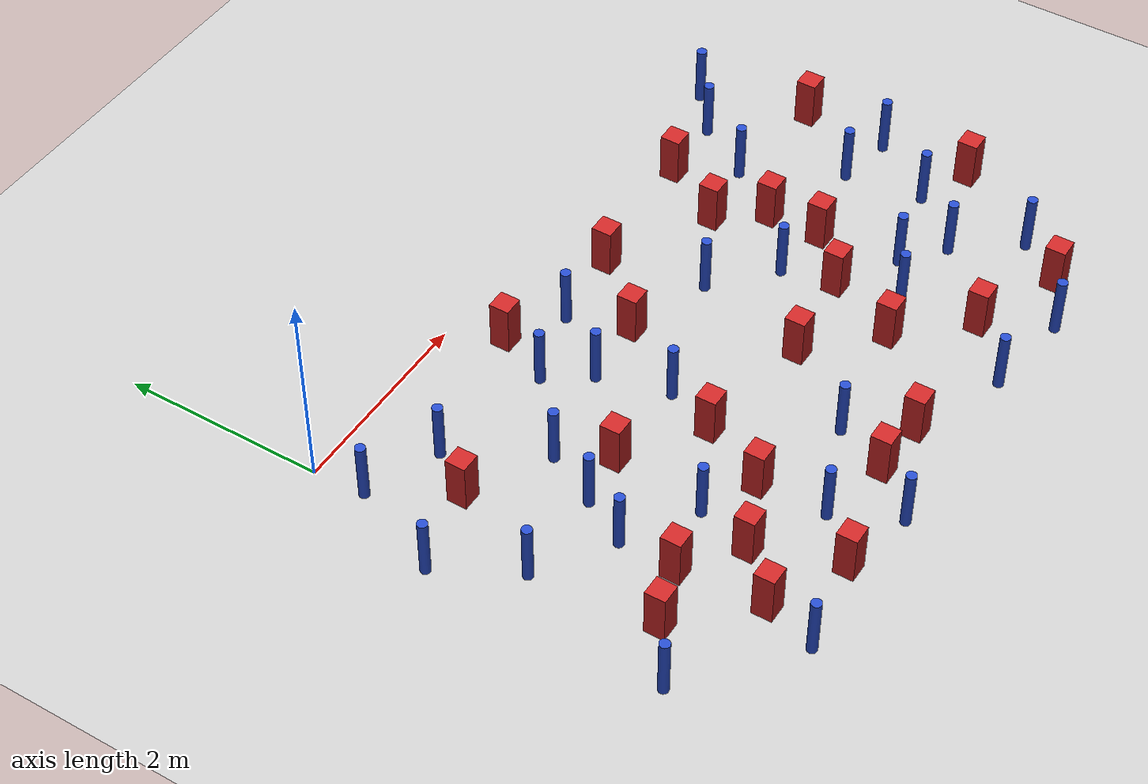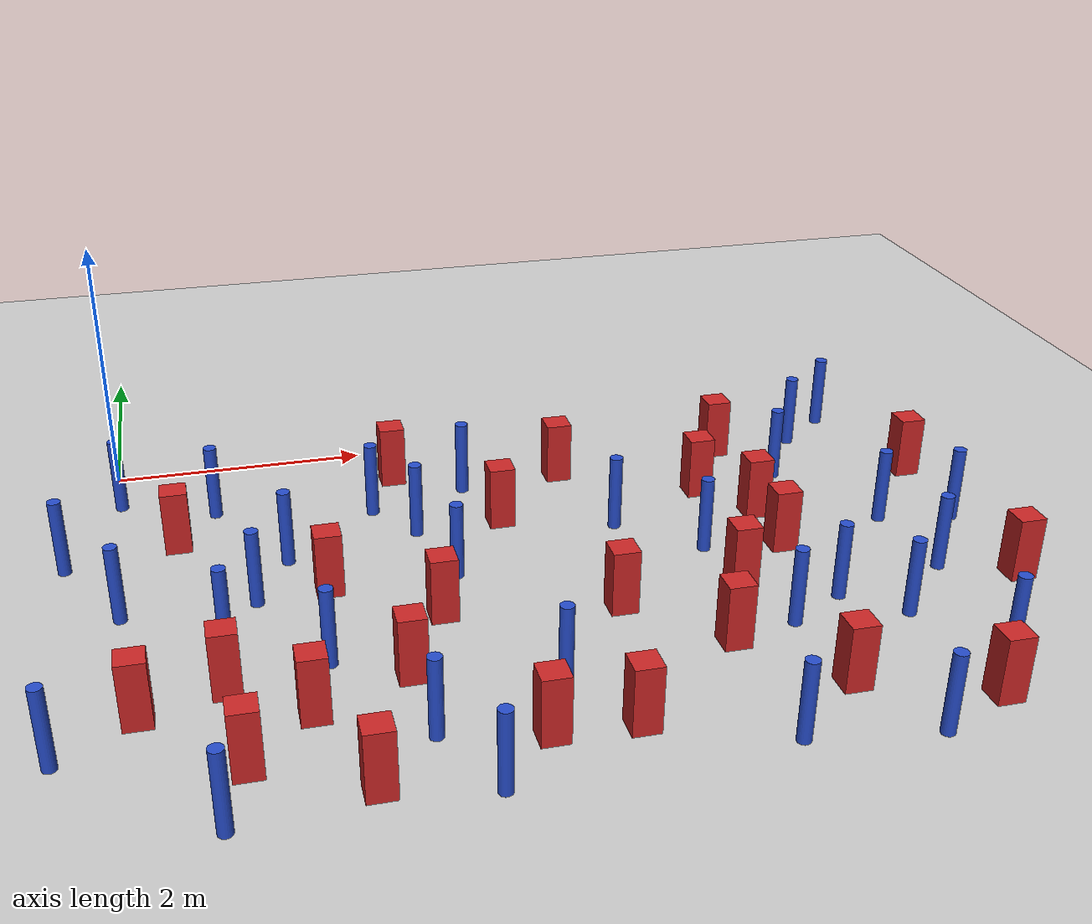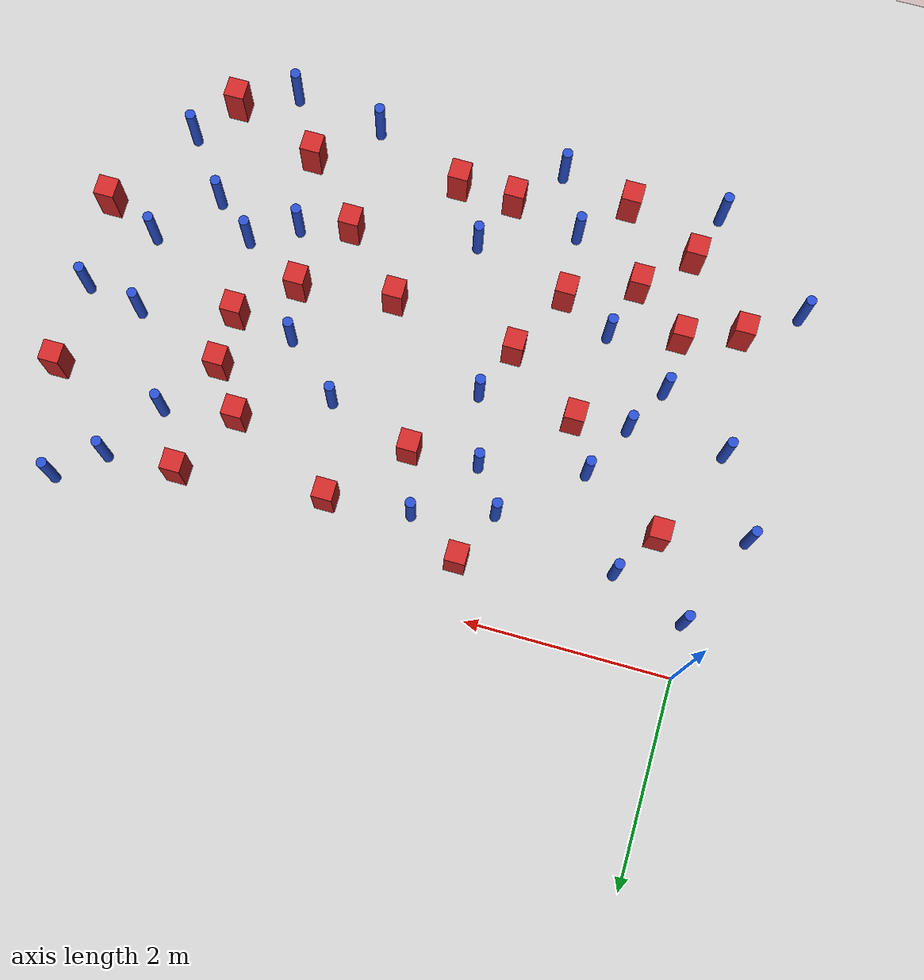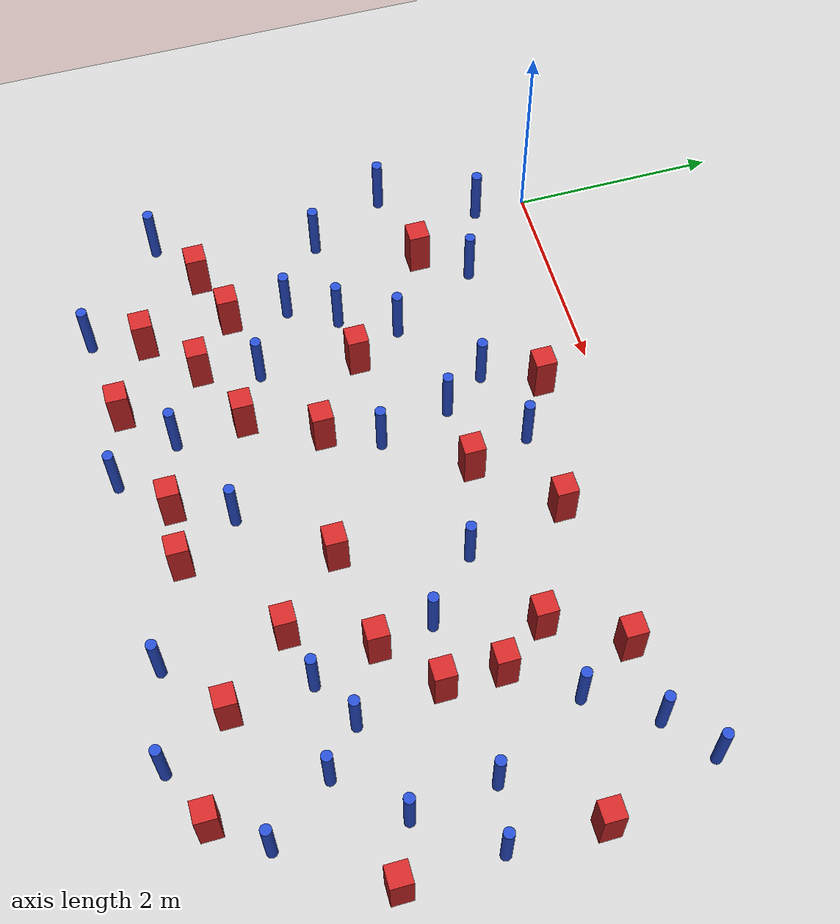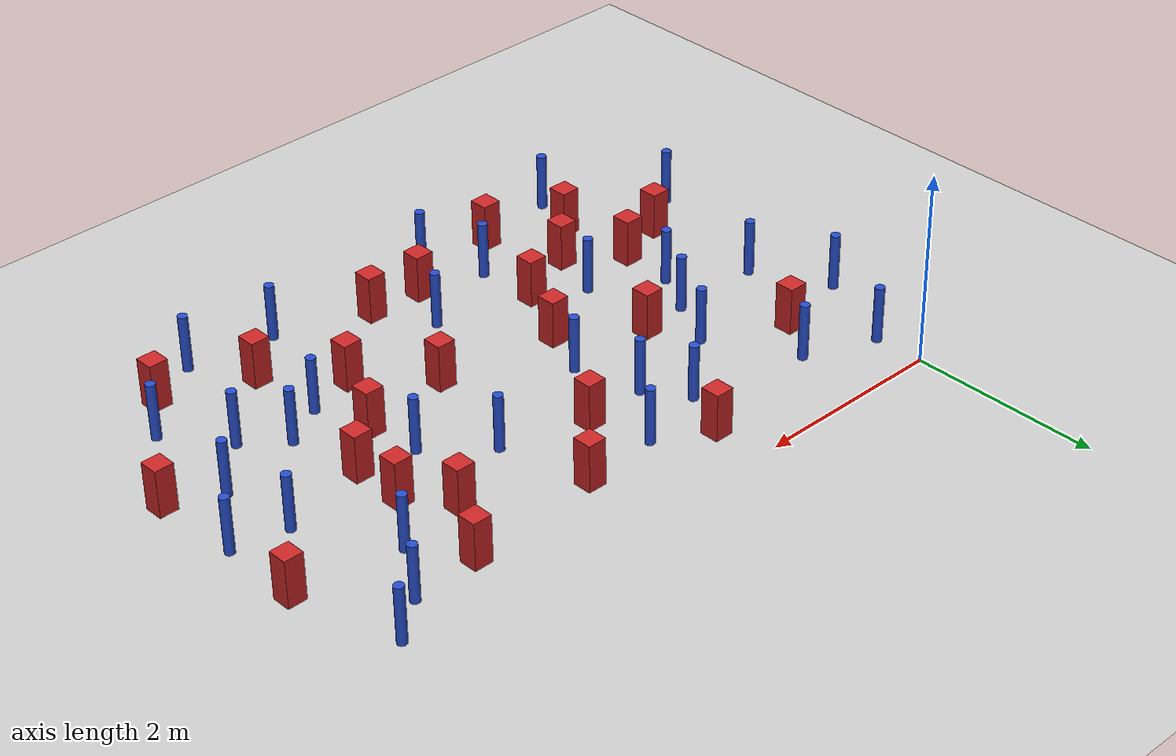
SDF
<sdf version="1.6">
 <world name="default">
  <model name="ground_plane">
   <static>1</static>
   <link name="link">
    <collision name="collision">
     <geometry><plane><normal>0 0 1</normal><size>100 100</size></plane></geometry>
     <surface><friction><ode><mu>100</mu><mu2>50</mu2></ode></friction></surface>
    </collision>
    <visual name="visual">
     <cast_shadows>0</cast_shadows>
     <geometry><plane><normal>0 0 1</normal><size>100 100</size></plane></geometry>
     <material>
      <ambient>1.0 1.0 1.0 1.0</ambient>
      <diffuse>0.8 0.8 0.8 1.0</diffuse>
      <specular>0.01 0.01 0.01 1.000000</specular>
     </material>
    </visual>
   </link>
  </model>
  <model name="square_post_obstacle0">
   <static>true</static>
   <pose>2.2371800552 -2.67245002533 -4.36207812815e-07 3.75137919937e-06 9.77721102514e-07 2.47381364184e-05</pose>
   <link name="link">
    <pose>0 0 0.25 0 -0 0</pose>
    <inertial>
     <mass>100</mass>
     <inertia>
      <ixx>0.166667</ixx>
      <ixy>0</ixy>
      <ixz>0</ixz>
      <iyy>0.166667</iyy>
      <iyz>0</iyz>
      <izz>0.166667</izz>
     </inertia>
    </inertial>
    <collision name="collision"><geometry><box><size>.2 .2 .5</size></box></geometry></collision>
    <visual name="visual">
     <geometry><box><size>.2 .2 .5</size></box></geometry>
     <material>
      <script><name>Gazebo/Red</name><uri>file://media/materials/scripts/gazebo.material</uri></script>
     </material>
    </visual>
   </link>
  </model>
  <model name="square_post_obstacle1">
   <static>true</static>
   <pose>0.704501055196 -3.23381002533 -4.36207812815e-07 3.75137919937e-06 9.77721102514e-07 2.47381364184e-05</pose>
   <link name="link">
    <pose>0 0 0.25 0 -0 0</pose>
    <inertial>
     <mass>100</mass>
     <inertia>
      <ixx>0.166667</ixx>
      <ixy>0</ixy>
      <ixz>0</ixz>
      <iyy>0.166667</iyy>
      <iyz>0</iyz>
      <izz>0.166667</izz>
     </inertia>
    </inertial>
    <collision name="collision"><geometry><box><size>.2 .2 .5</size></box></geometry></collision>
    <visual name="visual">
     <geometry><box><size>.2 .2 .5</size></box></geometry>
     <material>
      <script><name>Gazebo/Red</name><uri>file://media/materials/scripts/gazebo.material</uri></script>
     </material>
    </visual>
   </link>
  </model>
  <model name="pole_obstacle3">
   <static>true</static>
   <pose>5.06081000976 -3.08659997922 -3.09024884793e-07 -7.19054271912e-07 -2.11315075144e-07 -1.93935509269e-07</pose>
   <link name="link">
    <pose>0 0 0.3 0 -0 0</pose>
    <inertial>
     <mass>1</mass>
     <inertia><ixx>0.145833</ixx><ixy>0</ixy><ixz>0</ixz><iyy>0.145833</iyy><iyz>0</iyz><izz>0.125</izz></inertia>
    </inertial>
    <collision name="collision">
     <geometry><cylinder><radius>0.05</radius><length>.6</length></cylinder></geometry>
    </collision>
    <visual name="visual">
     <geometry><cylinder><radius>0.05</radius><length>.6</length></cylinder></geometry>
     <material>
      <script><name>Gazebo/Blue</name><uri>file://media/materials/scripts/gazebo.material</uri></script>
     </material>
    </visual>
   </link>
  </model>
  <model name="pole_obstacle10">
   <static>true</static>
   <pose>2.26384000976 -1.47178997922 -3.09024884793e-07 -7.19054271912e-07 -2.11315075122e-07 -1.93935509259e-07</pose>
   <link name="link">
    <pose>0 0 0.3 0 -0 0</pose>
    <inertial>
     <mass>1</mass>
     <inertia><ixx>0.145833</ixx><ixy>0</ixy><ixz>0</ixz><iyy>0.145833</iyy><iyz>0</iyz><izz>0.125</izz></inertia>
    </inertial>
    <collision name="collision">
     <geometry><cylinder><radius>0.05</radius><length>.6</length></cylinder></geometry>
    </collision>
    <visual name="visual">
     <geometry><cylinder><radius>0.05</radius><length>.6</length></cylinder></geometry>
     <material>
      <script><name>Gazebo/Blue</name><uri>file://media/materials/scripts/gazebo.material</uri></script>
     </material>
    </visual>
   </link>
  </model>
  <model name="square_post_obstacle8">
   <static>true</static>
   <pose>4.9464400552 -1.75761002533 -4.36207812815e-07 3.75137919937e-06 9.77721102514e-07 2.47381364184e-05</pose>
   <link name="link">
    <pose>0 0 0.25 0 -0 0</pose>
    <inertial>
     <mass>100</mass>
     <inertia>
      <ixx>0.166667</ixx>
      <ixy>0</ixy>
      <ixz>0</ixz>
      <iyy>0.166667</iyy>
      <iyz>0</iyz>
      <izz>0.166667</izz>
     </inertia>
    </inertial>
    <collision name="collision"><geometry><box><size>.2 .2 .5</size></box></geometry></collision>
    <visual name="visual">
     <geometry><box><size>.2 .2 .5</size></box></geometry>
     <material>
      <script><name>Gazebo/Red</name><uri>file://media/materials/scripts/gazebo.material</uri></script>
     </material>
    </visual>
   </link>
  </model>
  <model name="pole_obstacle14">
   <static>true</static>
   <pose>3.79471000976 -1.71364997922 -3.09024884793e-07 -7.19054271911e-07 -2.11315075167e-07 -1.93935509283e-07</pose>
   <link name="link">
    <pose>0 0 0.3 0 -0 0</pose>
    <inertial>
     <mass>1</mass>
     <inertia><ixx>0.145833</ixx><ixy>0</ixy><ixz>0</ixz><iyy>0.145833</iyy><iyz>0</iyz><izz>0.125</izz></inertia>
    </inertial>
    <collision name="collision">
     <geometry><cylinder><radius>0.05</radius><length>.6</length></cylinder></geometry>
    </collision>
    <visual name="visual">
     <geometry><cylinder><radius>0.05</radius><length>.6</length></cylinder></geometry>
     <material>
      <script><name>Gazebo/Blue</name><uri>file://media/materials/scripts/gazebo.material</uri></script>
     </material>
    </visual>
   </link>
  </model>
  <model name="pole_obstacle15">
   <static>true</static>
   <pose>2.23217000976 -4.61184997922 -3.09024884793e-07 -7.19054271912e-07 -2.11315075134e-07 -1.93935509266e-07</pose>
   <link name="link">
    <pose>0 0 0.3 0 -0 0</pose>
    <inertial>
     <mass>1</mass>
     <inertia><ixx>0.145833</ixx><ixy>0</ixy><ixz>0</ixz><iyy>0.145833</iyy><iyz>0</iyz><izz>0.125</izz></inertia>
    </inertial>
    <collision name="collision">
     <geometry><cylinder><radius>0.05</radius><length>.6</length></cylinder></geometry>
    </collision>
    <visual name="visual">
     <geometry><cylinder><radius>0.05</radius><length>.6</length></cylinder></geometry>
     <material>
      <script><name>Gazebo/Blue</name><uri>file://media/materials/scripts/gazebo.material</uri></script>
     </material>
    </visual>
   </link>
  </model>
  <model name="pole_obstacle24">
   <static>true</static>
   <pose>1.93601000976 -4.00876997922 -3.09024884793e-07 -7.19054271912e-07 -2.11315075135e-07 -1.93935509265e-07</pose>
   <link name="link">
    <pose>0 0 0.3 0 -0 0</pose>
    <inertial>
     <mass>1</mass>
     <inertia><ixx>0.145833</ixx><ixy>0</ixy><ixz>0</ixz><iyy>0.145833</iyy><iyz>0</iyz><izz>0.125</izz></inertia>
    </inertial>
    <collision name="collision">
     <geometry><cylinder><radius>0.05</radius><length>.6</length></cylinder></geometry>
    </collision>
    <visual name="visual">
     <geometry><cylinder><radius>0.05</radius><length>.6</length></cylinder></geometry>
     <material>
      <script><name>Gazebo/Blue</name><uri>file://media/materials/scripts/gazebo.material</uri></script>
     </material>
    </visual>
   </link>
  </model>
  <model name="square_post_obstacle19">
   <static>true</static>
   <pose>2.6304700552 -4.17659002533 -4.36207812815e-07 3.75137919937e-06 9.77721102514e-07 2.47381364184e-05</pose>
   <link name="link">
    <pose>0 0 0.25 0 -0 0</pose>
    <inertial>
     <mass>100</mass>
     <inertia>
      <ixx>0.166667</ixx>
      <ixy>0</ixy>
      <ixz>0</ixz>
      <iyy>0.166667</iyy>
      <iyz>0</iyz>
      <izz>0.166667</izz>
     </inertia>
    </inertial>
    <collision name="collision"><geometry><box><size>.2 .2 .5</size></box></geometry></collision>
    <visual name="visual">
     <geometry><box><size>.2 .2 .5</size></box></geometry>
     <material>
      <script><name>Gazebo/Red</name><uri>file://media/materials/scripts/gazebo.material</uri></script>
     </material>
    </visual>
   </link>
  </model>
  <model name="square_post_obstacle22">
   <static>true</static>
   <pose>3.2054900552 -4.20718002533 -4.36207812815e-07 3.75137919937e-06 9.77721102514e-07 2.47381364184e-05</pose>
   <link name="link">
    <pose>0 0 0.25 0 -0 0</pose>
    <inertial>
     <mass>100</mass>
     <inertia>
      <ixx>0.166667</ixx>
      <ixy>0</ixy>
      <ixz>0</ixz>
      <iyy>0.166667</iyy>
      <iyz>0</iyz>
      <izz>0.166667</izz>
     </inertia>
    </inertial>
    <collision name="collision"><geometry><box><size>.2 .2 .5</size></box></geometry></collision>
    <visual name="visual">
     <geometry><box><size>.2 .2 .5</size></box></geometry>
     <material>
      <script><name>Gazebo/Red</name><uri>file://media/materials/scripts/gazebo.material</uri></script>
     </material>
    </visual>
   </link>
  </model>
  <model name="pole_obstacle31">
   <static>true</static>
   <pose>4.61360000976 -3.33981997922 -3.09024884793e-07 -7.19054271912e-07 -2.11315075135e-07 -1.93935509265e-07</pose>
   <link name="link">
    <pose>0 0 0.3 0 -0 0</pose>
    <inertial>
     <mass>1</mass>
     <inertia><ixx>0.145833</ixx><ixy>0</ixy><ixz>0</ixz><iyy>0.145833</iyy><iyz>0</iyz><izz>0.125</izz></inertia>
    </inertial>
    <collision name="collision">
     <geometry><cylinder><radius>0.05</radius><length>.6</length></cylinder></geometry>
    </collision>
    <visual name="visual">
     <geometry><cylinder><radius>0.05</radius><length>.6</length></cylinder></geometry>
     <material>
      <script><name>Gazebo/Blue</name><uri>file://media/materials/scripts/gazebo.material</uri></script>
     </material>
    </visual>
   </link>
  </model>
  <model name="pole_obstacle34">
   <static>true</static>
   <pose>1.39208000976 -3.08439997922 -3.09024884848e-07 -7.19054271902e-07 -2.11315075192e-07 -1.93935509282e-07</pose>
   <link name="link">
    <pose>0 0 0.3 0 -0 0</pose>
    <inertial>
     <mass>1</mass>
     <inertia><ixx>0.145833</ixx><ixy>0</ixy><ixz>0</ixz><iyy>0.145833</iyy><iyz>0</iyz><izz>0.125</izz></inertia>
    </inertial>
    <collision name="collision">
     <geometry><cylinder><radius>0.05</radius><length>.6</length></cylinder></geometry>
    </collision>
    <visual name="visual">
     <geometry><cylinder><radius>0.05</radius><length>.6</length></cylinder></geometry>
     <material>
      <script><name>Gazebo/Blue</name><uri>file://media/materials/scripts/gazebo.material</uri></script>
     </material>
    </visual>
   </link>
  </model>
  <model name="pole_obstacle47">
   <static>true</static>
   <pose>5.03336000976 -4.71012997922 -3.09024884793e-07 -7.19054271911e-07 -2.1131507516e-07 -1.93935509277e-07</pose>
   <link name="link">
    <pose>0 0 0.3 0 -0 0</pose>
    <inertial>
     <mass>1</mass>
     <inertia><ixx>0.145833</ixx><ixy>0</ixy><ixz>0</ixz><iyy>0.145833</iyy><iyz>0</iyz><izz>0.125</izz></inertia>
    </inertial>
    <collision name="collision">
     <geometry><cylinder><radius>0.05</radius><length>.6</length></cylinder></geometry>
    </collision>
    <visual name="visual">
     <geometry><cylinder><radius>0.05</radius><length>.6</length></cylinder></geometry>
     <material>
      <script><name>Gazebo/Blue</name><uri>file://media/materials/scripts/gazebo.material</uri></script>
     </material>
    </visual>
   </link>
  </model>
  <model name="pole_obstacle49">
   <static>true</static>
   <pose>1.98076000976 -1.05652997922 -3.09024884793e-07 -7.19054271911e-07 -2.11315075169e-07 -1.93935509284e-07</pose>
   <link name="link">
    <pose>0 0 0.3 0 -0 0</pose>
    <inertial>
     <mass>1</mass>
     <inertia><ixx>0.145833</ixx><ixy>0</ixy><ixz>0</ixz><iyy>0.145833</iyy><iyz>0</iyz><izz>0.125</izz></inertia>
    </inertial>
    <collision name="collision">
     <geometry><cylinder><radius>0.05</radius><length>.6</length></cylinder></geometry>
    </collision>
    <visual name="visual">
     <geometry><cylinder><radius>0.05</radius><length>.6</length></cylinder></geometry>
     <material>
      <script><name>Gazebo/Blue</name><uri>file://media/materials/scripts/gazebo.material</uri></script>
     </material>
    </visual>
   </link>
  </model>
  <model name="pole_obstacle50">
   <static>true</static>
   <pose>6.43758000976 -2.20653997922 -3.09024884793e-07 -7.19054271912e-07 -2.11315075135e-07 -1.93935509265e-07</pose>
   <link name="link">
    <pose>0 0 0.3 0 -0 0</pose>
    <inertial>
     <mass>1</mass>
     <inertia><ixx>0.145833</ixx><ixy>0</ixy><ixz>0</ixz><iyy>0.145833</iyy><iyz>0</iyz><izz>0.125</izz></inertia>
    </inertial>
    <collision name="collision">
     <geometry><cylinder><radius>0.05</radius><length>.6</length></cylinder></geometry>
    </collision>
    <visual name="visual">
     <geometry><cylinder><radius>0.05</radius><length>.6</length></cylinder></geometry>
     <material>
      <script><name>Gazebo/Blue</name><uri>file://media/materials/scripts/gazebo.material</uri></script>
     </material>
    </visual>
   </link>
  </model>
  <model name="pole_obstacle60">
   <static>true</static>
   <pose>1.24848000976 -1.67799997922 -3.09024884793e-07 -7.19054271912e-07 -2.1131507513e-07 -1.93935509263e-07</pose>
   <link name="link">
    <pose>0 0 0.3 0 -0 0</pose>
    <inertial>
     <mass>1</mass>
     <inertia><ixx>0.145833</ixx><ixy>0</ixy><ixz>0</ixz><iyy>0.145833</iyy><iyz>0</iyz><izz>0.125</izz></inertia>
    </inertial>
    <collision name="collision">
     <geometry><cylinder><radius>0.05</radius><length>.6</length></cylinder></geometry>
    </collision>
    <visual name="visual">
     <geometry><cylinder><radius>0.05</radius><length>.6</length></cylinder></geometry>
     <material>
      <script><name>Gazebo/Blue</name><uri>file://media/materials/scripts/gazebo.material</uri></script>
     </material>
    </visual>
   </link>
  </model>
  <model name="square_post_obstacle47">
   <static>true</static>
   <pose>0.454677055196 -1.25677002533 -4.36207812815e-07 3.75137919937e-06 9.77721102514e-07 2.47381364184e-05</pose>
   <link name="link">
    <pose>0 0 0.25 0 -0 0</pose>
    <inertial>
     <mass>100</mass>
     <inertia>
      <ixx>0.166667</ixx>
      <ixy>0</ixy>
      <ixz>0</ixz>
      <iyy>0.166667</iyy>
      <iyz>0</iyz>
      <izz>0.166667</izz>
     </inertia>
    </inertial>
    <collision name="collision"><geometry><box><size>.2 .2 .5</size></box></geometry></collision>
    <visual name="visual">
     <geometry><box><size>.2 .2 .5</size></box></geometry>
     <material>
      <script><name>Gazebo/Red</name><uri>file://media/materials/scripts/gazebo.material</uri></script>
     </material>
    </visual>
   </link>
  </model>
  <model name="pole_obstacle67">
   <static>true</static>
   <pose>6.15035000976 -0.281910979217 -3.09024884793e-07 -7.19054271912e-07 -2.1131507512e-07 -1.93935509259e-07</pose>
   <link name="link">
    <pose>0 0 0.3 0 -0 0</pose>
    <inertial>
     <mass>1</mass>
     <inertia><ixx>0.145833</ixx><ixy>0</ixy><ixz>0</ixz><iyy>0.145833</iyy><iyz>0</iyz><izz>0.125</izz></inertia>
    </inertial>
    <collision name="collision">
     <geometry><cylinder><radius>0.05</radius><length>.6</length></cylinder></geometry>
    </collision>
    <visual name="visual">
     <geometry><cylinder><radius>0.05</radius><length>.6</length></cylinder></geometry>
     <material>
      <script><name>Gazebo/Blue</name><uri>file://media/materials/scripts/gazebo.material</uri></script>
     </material>
    </visual>
   </link>
  </model>
  <model name="pole_obstacle68">
   <static>true</static>
   <pose>2.44497000976 -2.16311997922 -3.09024884793e-07 -7.19054271912e-07 -2.11315075128e-07 -1.93935509262e-07</pose>
   <link name="link">
    <pose>0 0 0.3 0 -0 0</pose>
    <inertial>
     <mass>1</mass>
     <inertia><ixx>0.145833</ixx><ixy>0</ixy><ixz>0</ixz><iyy>0.145833</iyy><iyz>0</iyz><izz>0.125</izz></inertia>
    </inertial>
    <collision name="collision">
     <geometry><cylinder><radius>0.05</radius><length>.6</length></cylinder></geometry>
    </collision>
    <visual name="visual">
     <geometry><cylinder><radius>0.05</radius><length>.6</length></cylinder></geometry>
     <material>
      <script><name>Gazebo/Blue</name><uri>file://media/materials/scripts/gazebo.material</uri></script>
     </material>
    </visual>
   </link>
  </model>
  <model name="square_post_obstacle57">
   <static>true</static>
   <pose>2.2214200552 -0.527851025326 -4.36207812815e-07 3.75137919937e-06 9.77721102514e-07 2.47381364184e-05</pose>
   <link name="link">
    <pose>0 0 0.25 0 -0 0</pose>
    <inertial>
     <mass>100</mass>
     <inertia>
      <ixx>0.166667</ixx>
      <ixy>0</ixy>
      <ixz>0</ixz>
      <iyy>0.166667</iyy>
      <iyz>0</iyz>
      <izz>0.166667</izz>
     </inertia>
    </inertial>
    <collision name="collision"><geometry><box><size>.2 .2 .5</size></box></geometry></collision>
    <visual name="visual">
     <geometry><box><size>.2 .2 .5</size></box></geometry>
     <material>
      <script><name>Gazebo/Red</name><uri>file://media/materials/scripts/gazebo.material</uri></script>
     </material>
    </visual>
   </link>
  </model>
  <model name="square_post_obstacle60">
   <static>true</static>
   <pose>5.0160900552 -0.650365025326 -4.36207812815e-07 3.75137919937e-06 9.77721102514e-07 2.47381364184e-05</pose>
   <link name="link">
    <pose>0 0 0.25 0 -0 0</pose>
    <inertial>
     <mass>100</mass>
     <inertia>
      <ixx>0.166667</ixx>
      <ixy>0</ixy>
      <ixz>0</ixz>
      <iyy>0.166667</iyy>
      <iyz>0</iyz>
      <izz>0.166667</izz>
     </inertia>
    </inertial>
    <collision name="collision"><geometry><box><size>.2 .2 .5</size></box></geometry></collision>
    <visual name="visual">
     <geometry><box><size>.2 .2 .5</size></box></geometry>
     <material>
      <script><name>Gazebo/Red</name><uri>file://media/materials/scripts/gazebo.material</uri></script>
     </material>
    </visual>
   </link>
  </model>
  <model name="pole_obstacle73">
   <static>true</static>
   <pose>2.86335000976 -3.64889997922 -3.09024884848e-07 -7.19054271903e-07 -2.11315075195e-07 -1.93935509285e-07</pose>
   <link name="link">
    <pose>0 0 0.3 0 -0 0</pose>
    <inertial>
     <mass>1</mass>
     <inertia><ixx>0.145833</ixx><ixy>0</ixy><ixz>0</ixz><iyy>0.145833</iyy><iyz>0</iyz><izz>0.125</izz></inertia>
    </inertial>
    <collision name="collision">
     <geometry><cylinder><radius>0.05</radius><length>.6</length></cylinder></geometry>
    </collision>
    <visual name="visual">
     <geometry><cylinder><radius>0.05</radius><length>.6</length></cylinder></geometry>
     <material>
      <script><name>Gazebo/Blue</name><uri>file://media/materials/scripts/gazebo.material</uri></script>
     </material>
    </visual>
   </link>
  </model>
  <model name="pole_obstacle86">
   <static>true</static>
   <pose>0.0236110097609 -2.20623997922 -3.09024884793e-07 -7.19054271912e-07 -2.11315075128e-07 -1.9393550926e-07</pose>
   <link name="link">
    <pose>0 0 0.3 0 -0 0</pose>
    <inertial>
     <mass>1</mass>
     <inertia><ixx>0.145833</ixx><ixy>0</ixy><ixz>0</ixz><iyy>0.145833</iyy><iyz>0</iyz><izz>0.125</izz></inertia>
    </inertial>
    <collision name="collision">
     <geometry><cylinder><radius>0.05</radius><length>.6</length></cylinder></geometry>
    </collision>
    <visual name="visual">
     <geometry><cylinder><radius>0.05</radius><length>.6</length></cylinder></geometry>
     <material>
      <script><name>Gazebo/Blue</name><uri>file://media/materials/scripts/gazebo.material</uri></script>
     </material>
    </visual>
   </link>
  </model>
  <model name="square_post_obstacle77">
   <static>true</static>
   <pose>4.4453000552 -2.74243002533 -4.36207812815e-07 3.75137919937e-06 9.77721102514e-07 2.47381364184e-05</pose>
   <link name="link">
    <pose>0 0 0.25 0 -0 0</pose>
    <inertial>
     <mass>100</mass>
     <inertia>
      <ixx>0.166667</ixx>
      <ixy>0</ixy>
      <ixz>0</ixz>
      <iyy>0.166667</iyy>
      <iyz>0</iyz>
      <izz>0.166667</izz>
     </inertia>
    </inertial>
    <collision name="collision"><geometry><box><size>.2 .2 .5</size></box></geometry></collision>
    <visual name="visual">
     <geometry><box><size>.2 .2 .5</size></box></geometry>
     <material>
      <script><name>Gazebo/Red</name><uri>file://media/materials/scripts/gazebo.material</uri></script>
     </material>
    </visual>
   </link>
  </model>
  <model name="pole_obstacle96">
   <static>true</static>
   <pose>4.35418000976 -2.21477997922 -3.09024884793e-07 -7.19054271912e-07 -2.11315075144e-07 -1.93935509269e-07</pose>
   <link name="link">
    <pose>0 0 0.3 0 -0 0</pose>
    <inertial>
     <mass>1</mass>
     <inertia><ixx>0.145833</ixx><ixy>0</ixy><ixz>0</ixz><iyy>0.145833</iyy><iyz>0</iyz><izz>0.125</izz></inertia>
    </inertial>
    <collision name="collision">
     <geometry><cylinder><radius>0.05</radius><length>.6</length></cylinder></geometry>
    </collision>
    <visual name="visual">
     <geometry><cylinder><radius>0.05</radius><length>.6</length></cylinder></geometry>
     <material>
      <script><name>Gazebo/Blue</name><uri>file://media/materials/scripts/gazebo.material</uri></script>
     </material>
    </visual>
   </link>
  </model>
  <model name="square_post_obstacle90">
   <static>true</static>
   <pose>3.5716000552 -0.773021025326 -4.36207812815e-07 3.75137919937e-06 9.77721102514e-07 2.47381364184e-05</pose>
   <link name="link">
    <pose>0 0 0.25 0 -0 0</pose>
    <inertial>
     <mass>100</mass>
     <inertia>
      <ixx>0.166667</ixx>
      <ixy>0</ixy>
      <ixz>0</ixz>
      <iyy>0.166667</iyy>
      <iyz>0</iyz>
      <izz>0.166667</izz>
     </inertia>
    </inertial>
    <collision name="collision"><geometry><box><size>.2 .2 .5</size></box></geometry></collision>
    <visual name="visual">
     <geometry><box><size>.2 .2 .5</size></box></geometry>
     <material>
      <script><name>Gazebo/Red</name><uri>file://media/materials/scripts/gazebo.material</uri></script>
     </material>
    </visual>
   </link>
  </model>
  <model name="square_post_obstacle94">
   <static>true</static>
   <pose>0.776040055196 -4.07610002533 -4.36207812815e-07 3.75137919937e-06 9.77721102514e-07 2.47381364184e-05</pose>
   <link name="link">
    <pose>0 0 0.25 0 -0 0</pose>
    <inertial>
     <mass>100</mass>
     <inertia>
      <ixx>0.166667</ixx>
      <ixy>0</ixy>
      <ixz>0</ixz>
      <iyy>0.166667</iyy>
      <iyz>0</iyz>
      <izz>0.166667</izz>
     </inertia>
    </inertial>
    <collision name="collision"><geometry><box><size>.2 .2 .5</size></box></geometry></collision>
    <visual name="visual">
     <geometry><box><size>.2 .2 .5</size></box></geometry>
     <material>
      <script><name>Gazebo/Red</name><uri>file://media/materials/scripts/gazebo.material</uri></script>
     </material>
    </visual>
   </link>
  </model>
  <model name="square_post_obstacle103">
   <static>true</static>
   <pose>3.4905000552 -2.86288002533 -4.36207812815e-07 3.75137919937e-06 9.77721102514e-07 2.47381364184e-05</pose>
   <link name="link">
    <pose>0 0 0.25 0 -0 0</pose>
    <inertial>
     <mass>100</mass>
     <inertia>
      <ixx>0.166667</ixx>
      <ixy>0</ixy>
      <ixz>0</ixz>
      <iyy>0.166667</iyy>
      <iyz>0</iyz>
      <izz>0.166667</izz>
     </inertia>
    </inertial>
    <collision name="collision"><geometry><box><size>.2 .2 .5</size></box></geometry></collision>
    <visual name="visual">
     <geometry><box><size>.2 .2 .5</size></box></geometry>
     <material>
      <script><name>Gazebo/Red</name><uri>file://media/materials/scripts/gazebo.material</uri></script>
     </material>
    </visual>
   </link>
  </model>
  <model name="pole_obstacle111">
   <static>true</static>
   <pose>0.758305009761 -0.807072979217 -3.09024884793e-07 -7.19054271912e-07 -2.11315075133e-07 -1.93935509265e-07</pose>
   <link name="link">
    <pose>0 0 0.3 0 -0 0</pose>
    <inertial>
     <mass>1</mass>
     <inertia><ixx>0.145833</ixx><ixy>0</ixy><ixz>0</ixz><iyy>0.145833</iyy><iyz>0</iyz><izz>0.125</izz></inertia>
    </inertial>
    <collision name="collision">
     <geometry><cylinder><radius>0.05</radius><length>.6</length></cylinder></geometry>
    </collision>
    <visual name="visual">
     <geometry><cylinder><radius>0.05</radius><length>.6</length></cylinder></geometry>
     <material>
      <script><name>Gazebo/Blue</name><uri>file://media/materials/scripts/gazebo.material</uri></script>
     </material>
    </visual>
   </link>
  </model>
  <model name="pole_obstacle115">
   <static>true</static>
   <pose>5.89847000976 -4.00865997922 -3.09024884793e-07 -7.19054271911e-07 -2.11315075159e-07 -1.93935509277e-07</pose>
   <link name="link">
    <pose>0 0 0.3 0 -0 0</pose>
    <inertial>
     <mass>1</mass>
     <inertia><ixx>0.145833</ixx><ixy>0</ixy><ixz>0</ixz><iyy>0.145833</iyy><iyz>0</iyz><izz>0.125</izz></inertia>
    </inertial>
    <collision name="collision">
     <geometry><cylinder><radius>0.05</radius><length>.6</length></cylinder></geometry>
    </collision>
    <visual name="visual">
     <geometry><cylinder><radius>0.05</radius><length>.6</length></cylinder></geometry>
     <material>
      <script><name>Gazebo/Blue</name><uri>file://media/materials/scripts/gazebo.material</uri></script>
     </material>
    </visual>
   </link>
  </model>
  <model name="square_post_obstacle120">
   <static>true</static>
   <pose>1.5154200552 -4.44139002533 -4.36207812815e-07 3.75137919937e-06 9.77721102514e-07 2.47381364184e-05</pose>
   <link name="link">
    <pose>0 0 0.25 0 -0 0</pose>
    <inertial>
     <mass>100</mass>
     <inertia>
      <ixx>0.166667</ixx>
      <ixy>0</ixy>
      <ixz>0</ixz>
      <iyy>0.166667</iyy>
      <iyz>0</iyz>
      <izz>0.166667</izz>
     </inertia>
    </inertial>
    <collision name="collision"><geometry><box><size>.2 .2 .5</size></box></geometry></collision>
    <visual name="visual">
     <geometry><box><size>.2 .2 .5</size></box></geometry>
     <material>
      <script><name>Gazebo/Red</name><uri>file://media/materials/scripts/gazebo.material</uri></script>
     </material>
    </visual>
   </link>
  </model>
  <model name="pole_obstacle124">
   <static>true</static>
   <pose>5.96252000976 -2.87487997922 -3.09024884793e-07 -7.19054271912e-07 -2.11315075144e-07 -1.93935509269e-07</pose>
   <link name="link">
    <pose>0 0 0.3 0 -0 0</pose>
    <inertial>
     <mass>1</mass>
     <inertia><ixx>0.145833</ixx><ixy>0</ixy><ixz>0</ixz><iyy>0.145833</iyy><iyz>0</iyz><izz>0.125</izz></inertia>
    </inertial>
    <collision name="collision">
     <geometry><cylinder><radius>0.05</radius><length>.6</length></cylinder></geometry>
    </collision>
    <visual name="visual">
     <geometry><cylinder><radius>0.05</radius><length>.6</length></cylinder></geometry>
     <material>
      <script><name>Gazebo/Blue</name><uri>file://media/materials/scripts/gazebo.material</uri></script>
     </material>
    </visual>
   </link>
  </model>
  <model name="pole_obstacle132">
   <static>true</static>
   <pose>0.0286390097609 -0.517111979217 -3.09024884793e-07 -7.19054271912e-07 -2.11315075136e-07 -1.93935509264e-07</pose>
   <link name="link">
    <pose>0 0 0.3 0 -0 0</pose>
    <inertial>
     <mass>1</mass>
     <inertia><ixx>0.145833</ixx><ixy>0</ixy><ixz>0</ixz><iyy>0.145833</iyy><iyz>0</iyz><izz>0.125</izz></inertia>
    </inertial>
    <collision name="collision">
     <geometry><cylinder><radius>0.05</radius><length>.6</length></cylinder></geometry>
    </collision>
    <visual name="visual">
     <geometry><cylinder><radius>0.05</radius><length>.6</length></cylinder></geometry>
     <material>
      <script><name>Gazebo/Blue</name><uri>file://media/materials/scripts/gazebo.material</uri></script>
     </material>
    </visual>
   </link>
  </model>
  <model name="pole_obstacle137">
   <static>true</static>
   <pose>0.975713009761 -2.21023997922 -3.09024884793e-07 -7.19054271912e-07 -2.11315075135e-07 -1.93935509266e-07</pose>
   <link name="link">
    <pose>0 0 0.3 0 -0 0</pose>
    <inertial>
     <mass>1</mass>
     <inertia><ixx>0.145833</ixx><ixy>0</ixy><ixz>0</ixz><iyy>0.145833</iyy><iyz>0</iyz><izz>0.125</izz></inertia>
    </inertial>
    <collision name="collision">
     <geometry><cylinder><radius>0.05</radius><length>.6</length></cylinder></geometry>
    </collision>
    <visual name="visual">
     <geometry><cylinder><radius>0.05</radius><length>.6</length></cylinder></geometry>
     <material>
      <script><name>Gazebo/Blue</name><uri>file://media/materials/scripts/gazebo.material</uri></script>
     </material>
    </visual>
   </link>
  </model>
  <model name="pole_obstacle141">
   <static>true</static>
   <pose>5.86741000976 -2.09606997922 -3.09024884793e-07 -7.19054271912e-07 -2.11315075144e-07 -1.93935509269e-07</pose>
   <link name="link">
    <pose>0 0 0.3 0 -0 0</pose>
    <inertial>
     <mass>1</mass>
     <inertia><ixx>0.145833</ixx><ixy>0</ixy><ixz>0</ixz><iyy>0.145833</iyy><iyz>0</iyz><izz>0.125</izz></inertia>
    </inertial>
    <collision name="collision">
     <geometry><cylinder><radius>0.05</radius><length>.6</length></cylinder></geometry>
    </collision>
    <visual name="visual">
     <geometry><cylinder><radius>0.05</radius><length>.6</length></cylinder></geometry>
     <material>
      <script><name>Gazebo/Blue</name><uri>file://media/materials/scripts/gazebo.material</uri></script>
     </material>
    </visual>
   </link>
  </model>
  <model name="pole_obstacle144">
   <static>true</static>
   <pose>4.12941000976 -4.57515997922 -3.09024884793e-07 -7.19054271911e-07 -2.1131507516e-07 -1.93935509277e-07</pose>
   <link name="link">
    <pose>0 0 0.3 0 -0 0</pose>
    <inertial>
     <mass>1</mass>
     <inertia><ixx>0.145833</ixx><ixy>0</ixy><ixz>0</ixz><iyy>0.145833</iyy><iyz>0</iyz><izz>0.125</izz></inertia>
    </inertial>
    <collision name="collision">
     <geometry><cylinder><radius>0.05</radius><length>.6</length></cylinder></geometry>
    </collision>
    <visual name="visual">
     <geometry><cylinder><radius>0.05</radius><length>.6</length></cylinder></geometry>
     <material>
      <script><name>Gazebo/Blue</name><uri>file://media/materials/scripts/gazebo.material</uri></script>
     </material>
    </visual>
   </link>
  </model>
  <model name="square_post_obstacle143">
   <static>true</static>
   <pose>1.8980400552 -3.34631002533 -4.36207812815e-07 3.75137919937e-06 9.77721102514e-07 2.47381364184e-05</pose>
   <link name="link">
    <pose>0 0 0.25 0 -0 0</pose>
    <inertial>
     <mass>100</mass>
     <inertia>
      <ixx>0.166667</ixx>
      <ixy>0</ixy>
      <ixz>0</ixz>
      <iyy>0.166667</iyy>
      <iyz>0</iyz>
      <izz>0.166667</izz>
     </inertia>
    </inertial>
    <collision name="collision"><geometry><box><size>.2 .2 .5</size></box></geometry></collision>
    <visual name="visual">
     <geometry><box><size>.2 .2 .5</size></box></geometry>
     <material>
      <script><name>Gazebo/Red</name><uri>file://media/materials/scripts/gazebo.material</uri></script>
     </material>
    </visual>
   </link>
  </model>
  <model name="square_post_obstacle144">
   <static>true</static>
   <pose>4.6846100552 -4.09818002533 -4.36207812815e-07 3.75137919937e-06 9.77721102514e-07 2.47381364184e-05</pose>
   <link name="link">
    <pose>0 0 0.25 0 -0 0</pose>
    <inertial>
     <mass>100</mass>
     <inertia>
      <ixx>0.166667</ixx>
      <ixy>0</ixy>
      <ixz>0</ixz>
      <iyy>0.166667</iyy>
      <iyz>0</iyz>
      <izz>0.166667</izz>
     </inertia>
    </inertial>
    <collision name="collision"><geometry><box><size>.2 .2 .5</size></box></geometry></collision>
    <visual name="visual">
     <geometry><box><size>.2 .2 .5</size></box></geometry>
     <material>
      <script><name>Gazebo/Red</name><uri>file://media/materials/scripts/gazebo.material</uri></script>
     </material>
    </visual>
   </link>
  </model>
  <model name="pole_obstacle152">
   <static>true</static>
   <pose>2.75476000976 -0.842196979217 -3.09024884793e-07 -7.19054271912e-07 -2.11315075126e-07 -1.93935509262e-07</pose>
   <link name="link">
    <pose>0 0 0.3 0 -0 0</pose>
    <inertial>
     <mass>1</mass>
     <inertia><ixx>0.145833</ixx><ixy>0</ixy><ixz>0</ixz><iyy>0.145833</iyy><iyz>0</iyz><izz>0.125</izz></inertia>
    </inertial>
    <collision name="collision">
     <geometry><cylinder><radius>0.05</radius><length>.6</length></cylinder></geometry>
    </collision>
    <visual name="visual">
     <geometry><cylinder><radius>0.05</radius><length>.6</length></cylinder></geometry>
     <material>
      <script><name>Gazebo/Blue</name><uri>file://media/materials/scripts/gazebo.material</uri></script>
     </material>
    </visual>
   </link>
  </model>
  <model name="square_post_obstacle145">
   <static>true</static>
   <pose>4.9455500552 -2.30138002533 -4.36207812815e-07 3.75137919937e-06 9.77721102514e-07 2.47381364184e-05</pose>
   <link name="link">
    <pose>0 0 0.25 0 -0 0</pose>
    <inertial>
     <mass>100</mass>
     <inertia>
      <ixx>0.166667</ixx>
      <ixy>0</ixy>
      <ixz>0</ixz>
      <iyy>0.166667</iyy>
      <iyz>0</iyz>
      <izz>0.166667</izz>
     </inertia>
    </inertial>
    <collision name="collision"><geometry><box><size>.2 .2 .5</size></box></geometry></collision>
    <visual name="visual">
     <geometry><box><size>.2 .2 .5</size></box></geometry>
     <material>
      <script><name>Gazebo/Red</name><uri>file://media/materials/scripts/gazebo.material</uri></script>
     </material>
    </visual>
   </link>
  </model>
  <model name="square_post_obstacle171">
   <static>true</static>
   <pose>0.140933055196 -3.42415002533 -4.36207812815e-07 3.75137919937e-06 9.77721102514e-07 2.47381364184e-05</pose>
   <link name="link">
    <pose>0 0 0.25 0 -0 0</pose>
    <inertial>
     <mass>100</mass>
     <inertia>
      <ixx>0.166667</ixx>
      <ixy>0</ixy>
      <ixz>0</ixz>
      <iyy>0.166667</iyy>
      <iyz>0</iyz>
      <izz>0.166667</izz>
     </inertia>
    </inertial>
    <collision name="collision"><geometry><box><size>.2 .2 .5</size></box></geometry></collision>
    <visual name="visual">
     <geometry><box><size>.2 .2 .5</size></box></geometry>
     <material>
      <script><name>Gazebo/Red</name><uri>file://media/materials/scripts/gazebo.material</uri></script>
     </material>
    </visual>
   </link>
  </model>
  <model name="pole_obstacle172">
   <static>true</static>
   <pose>5.34646000976 -1.19654997922 -3.09024884793e-07 -7.19054271912e-07 -2.11315075123e-07 -1.93935509261e-07</pose>
   <link name="link">
    <pose>0 0 0.3 0 -0 0</pose>
    <inertial>
     <mass>1</mass>
     <inertia><ixx>0.145833</ixx><ixy>0</ixy><ixz>0</ixz><iyy>0.145833</iyy><iyz>0</iyz><izz>0.125</izz></inertia>
    </inertial>
    <collision name="collision">
     <geometry><cylinder><radius>0.05</radius><length>.6</length></cylinder></geometry>
    </collision>
    <visual name="visual">
     <geometry><cylinder><radius>0.05</radius><length>.6</length></cylinder></geometry>
     <material>
      <script><name>Gazebo/Blue</name><uri>file://media/materials/scripts/gazebo.material</uri></script>
     </material>
    </visual>
   </link>
  </model>
  <model name="pole_obstacle180">
   <static>true</static>
   <pose>0.613650009761 -4.58701997922 -3.09024884793e-07 -7.19054271912e-07 -2.11315075129e-07 -1.93935509261e-07</pose>
   <link name="link">
    <pose>0 0 0.3 0 -0 0</pose>
    <inertial>
     <mass>1</mass>
     <inertia><ixx>0.145833</ixx><ixy>0</ixy><ixz>0</ixz><iyy>0.145833</iyy><iyz>0</iyz><izz>0.125</izz></inertia>
    </inertial>
    <collision name="collision">
     <geometry><cylinder><radius>0.05</radius><length>.6</length></cylinder></geometry>
    </collision>
    <visual name="visual">
     <geometry><cylinder><radius>0.05</radius><length>.6</length></cylinder></geometry>
     <material>
      <script><name>Gazebo/Blue</name><uri>file://media/materials/scripts/gazebo.material</uri></script>
     </material>
    </visual>
   </link>
  </model>
  <model name="square_post_obstacle180">
   <static>true</static>
   <pose>4.6220600552 -1.30895002533 -4.36207812815e-07 3.75137919937e-06 9.77721102514e-07 2.47381364184e-05</pose>
   <link name="link">
    <pose>0 0 0.25 0 -0 0</pose>
    <inertial>
     <mass>100</mass>
     <inertia>
      <ixx>0.166667</ixx>
      <ixy>0</ixy>
      <ixz>0</ixz>
      <iyy>0.166667</iyy>
      <iyz>0</iyz>
      <izz>0.166667</izz>
     </inertia>
    </inertial>
    <collision name="collision"><geometry><box><size>.2 .2 .5</size></box></geometry></collision>
    <visual name="visual">
     <geometry><box><size>.2 .2 .5</size></box></geometry>
     <material>
      <script><name>Gazebo/Red</name><uri>file://media/materials/scripts/gazebo.material</uri></script>
     </material>
    </visual>
   </link>
  </model>
  <model name="square_post_obstacle185">
   <static>true</static>
   <pose>1.2276100552 -3.63372002533 -4.36207812815e-07 3.75137919937e-06 9.77721102514e-07 2.47381364184e-05</pose>
   <link name="link">
    <pose>0 0 0.25 0 -0 0</pose>
    <inertial>
     <mass>100</mass>
     <inertia>
      <ixx>0.166667</ixx>
      <ixy>0</ixy>
      <ixz>0</ixz>
      <iyy>0.166667</iyy>
      <iyz>0</iyz>
      <izz>0.166667</izz>
     </inertia>
    </inertial>
    <collision name="collision"><geometry><box><size>.2 .2 .5</size></box></geometry></collision>
    <visual name="visual">
     <geometry><box><size>.2 .2 .5</size></box></geometry>
     <material>
      <script><name>Gazebo/Red</name><uri>file://media/materials/scripts/gazebo.material</uri></script>
     </material>
    </visual>
   </link>
  </model>
  <model name="square_post_obstacle191">
   <static>true</static>
   <pose>4.1063400552 -3.46482002533 -4.36207812815e-07 3.75137919937e-06 9.77721102514e-07 2.47381364184e-05</pose>
   <link name="link">
    <pose>0 0 0.25 0 -0 0</pose>
    <inertial>
     <mass>100</mass>
     <inertia>
      <ixx>0.166667</ixx>
      <ixy>0</ixy>
      <ixz>0</ixz>
      <iyy>0.166667</iyy>
      <iyz>0</iyz>
      <izz>0.166667</izz>
     </inertia>
    </inertial>
    <collision name="collision"><geometry><box><size>.2 .2 .5</size></box></geometry></collision>
    <visual name="visual">
     <geometry><box><size>.2 .2 .5</size></box></geometry>
     <material>
      <script><name>Gazebo/Red</name><uri>file://media/materials/scripts/gazebo.material</uri></script>
     </material>
    </visual>
   </link>
  </model>
  <model name="square_post_obstacle194">
   <static>true</static>
   <pose>1.5014800552 -2.14921002533 -4.36207812815e-07 3.75137919937e-06 9.77721102514e-07 2.47381364184e-05</pose>
   <link name="link">
    <pose>0 0 0.25 0 -0 0</pose>
    <inertial>
     <mass>100</mass>
     <inertia>
      <ixx>0.166667</ixx>
      <ixy>0</ixy>
      <ixz>0</ixz>
      <iyy>0.166667</iyy>
      <iyz>0</iyz>
      <izz>0.166667</izz>
     </inertia>
    </inertial>
    <collision name="collision"><geometry><box><size>.2 .2 .5</size></box></geometry></collision>
    <visual name="visual">
     <geometry><box><size>.2 .2 .5</size></box></geometry>
     <material>
      <script><name>Gazebo/Red</name><uri>file://media/materials/scripts/gazebo.material</uri></script>
     </material>
    </visual>
   </link>
  </model>
  <model name="square_post_obstacle203">
   <static>true</static>
   <pose>6.4526200552 -1.35705002533 -4.36207812815e-07 3.75137919937e-06 9.77721102514e-07 2.47381364184e-05</pose>
   <link name="link">
    <pose>0 0 0.25 0 -0 0</pose>
    <inertial>
     <mass>100</mass>
     <inertia>
      <ixx>0.166667</ixx>
      <ixy>0</ixy>
      <ixz>0</ixz>
      <iyy>0.166667</iyy>
      <iyz>0</iyz>
      <izz>0.166667</izz>
     </inertia>
    </inertial>
    <collision name="collision"><geometry><box><size>.2 .2 .5</size></box></geometry></collision>
    <visual name="visual">
     <geometry><box><size>.2 .2 .5</size></box></geometry>
     <material>
      <script><name>Gazebo/Red</name><uri>file://media/materials/scripts/gazebo.material</uri></script>
     </material>
    </visual>
   </link>
  </model>
  <model name="pole_obstacle194">
   <static>true</static>
   <pose>0.726679009761 -2.66624997922 -3.09024884793e-07 -7.19054271912e-07 -2.11315075131e-07 -1.93935509264e-07</pose>
   <link name="link">
    <pose>0 0 0.3 0 -0 0</pose>
    <inertial>
     <mass>1</mass>
     <inertia><ixx>0.145833</ixx><ixy>0</ixy><ixz>0</ixz><iyy>0.145833</iyy><iyz>0</iyz><izz>0.125</izz></inertia>
    </inertial>
    <collision name="collision">
     <geometry><cylinder><radius>0.05</radius><length>.6</length></cylinder></geometry>
    </collision>
    <visual name="visual">
     <geometry><cylinder><radius>0.05</radius><length>.6</length></cylinder></geometry>
     <material>
      <script><name>Gazebo/Blue</name><uri>file://media/materials/scripts/gazebo.material</uri></script>
     </material>
    </visual>
   </link>
  </model>
  <model name="pole_obstacle197">
   <static>true</static>
   <pose>5.72743000976 -0.614687979217 -3.09024884793e-07 -7.19054271912e-07 -2.11315075137e-07 -1.93935509266e-07</pose>
   <link name="link">
    <pose>0 0 0.3 0 -0 0</pose>
    <inertial>
     <mass>1</mass>
     <inertia><ixx>0.145833</ixx><ixy>0</ixy><ixz>0</ixz><iyy>0.145833</iyy><iyz>0</iyz><izz>0.125</izz></inertia>
    </inertial>
    <collision name="collision">
     <geometry><cylinder><radius>0.05</radius><length>.6</length></cylinder></geometry>
    </collision>
    <visual name="visual">
     <geometry><cylinder><radius>0.05</radius><length>.6</length></cylinder></geometry>
     <material>
      <script><name>Gazebo/Blue</name><uri>file://media/materials/scripts/gazebo.material</uri></script>
     </material>
    </visual>
   </link>
  </model>
  <model name="square_post_obstacle210">
   <static>true</static>
   <pose>6.4829800552 -3.10552002533 -4.36207812815e-07 3.75137919937e-06 9.77721102514e-07 2.47381364184e-05</pose>
   <link name="link">
    <pose>0 0 0.25 0 -0 0</pose>
    <inertial>
     <mass>100</mass>
     <inertia>
      <ixx>0.166667</ixx>
      <ixy>0</ixy>
      <ixz>0</ixz>
      <iyy>0.166667</iyy>
      <iyz>0</iyz>
      <izz>0.166667</izz>
     </inertia>
    </inertial>
    <collision name="collision"><geometry><box><size>.2 .2 .5</size></box></geometry></collision>
    <visual name="visual">
     <geometry><box><size>.2 .2 .5</size></box></geometry>
     <material>
      <script><name>Gazebo/Red</name><uri>file://media/materials/scripts/gazebo.material</uri></script>
     </material>
    </visual>
   </link>
  </model>
  <model name="pole_obstacle202">
   <static>true</static>
   <pose>-0.381397990239 -1.44282997922 -3.09024884793e-07 -7.19054271912e-07 -2.11315075131e-07 -1.93935509262e-07</pose>
   <link name="link">
    <pose>0 0 0.3 0 -0 0</pose>
    <inertial>
     <mass>1</mass>
     <inertia><ixx>0.145833</ixx><ixy>0</ixy><ixz>0</ixz><iyy>0.145833</iyy><iyz>0</iyz><izz>0.125</izz></inertia>
    </inertial>
    <collision name="collision">
     <geometry><cylinder><radius>0.05</radius><length>.6</length></cylinder></geometry>
    </collision>
    <visual name="visual">
     <geometry><cylinder><radius>0.05</radius><length>.6</length></cylinder></geometry>
     <material>
      <script><name>Gazebo/Blue</name><uri>file://media/materials/scripts/gazebo.material</uri></script>
     </material>
    </visual>
   </link>
  </model>
  <model name="square_post_obstacle216">
   <static>true</static>
   <pose>2.9378900552 -1.43768002533 -4.36207812815e-07 3.75137919937e-06 9.77721102514e-07 2.47381364184e-05</pose>
   <link name="link">
    <pose>0 0 0.25 0 -0 0</pose>
    <inertial>
     <mass>100</mass>
     <inertia>
      <ixx>0.166667</ixx>
      <ixy>0</ixy>
      <ixz>0</ixz>
      <iyy>0.166667</iyy>
      <iyz>0</iyz>
      <izz>0.166667</izz>
     </inertia>
    </inertial>
    <collision name="collision"><geometry><box><size>.2 .2 .5</size></box></geometry></collision>
    <visual name="visual">
     <geometry><box><size>.2 .2 .5</size></box></geometry>
     <material>
      <script><name>Gazebo/Red</name><uri>file://media/materials/scripts/gazebo.material</uri></script>
     </material>
    </visual>
   </link>
  </model>
  <model name="pole_obstacle203">
   <static>true</static>
   <pose>5.45194000976 -3.41275997922 -3.09024884793e-07 -7.19054271912e-07 -2.11315075135e-07 -1.93935509265e-07</pose>
   <link name="link">
    <pose>0 0 0.3 0 -0 0</pose>
    <inertial>
     <mass>1</mass>
     <inertia><ixx>0.145833</ixx><ixy>0</ixy><ixz>0</ixz><iyy>0.145833</iyy><iyz>0</iyz><izz>0.125</izz></inertia>
    </inertial>
    <collision name="collision">
     <geometry><cylinder><radius>0.05</radius><length>.6</length></cylinder></geometry>
    </collision>
    <visual name="visual">
     <geometry><cylinder><radius>0.05</radius><length>.6</length></cylinder></geometry>
     <material>
      <script><name>Gazebo/Blue</name><uri>file://media/materials/scripts/gazebo.material</uri></script>
     </material>
    </visual>
   </link>
  </model>
  <model name="square_post_obstacle220">
   <static>true</static>
   <pose>5.5751000552 -4.44803002533 -4.36207812815e-07 3.75137919937e-06 9.77721102514e-07 2.47381364184e-05</pose>
   <link name="link">
    <pose>0 0 0.25 0 -0 0</pose>
    <inertial>
     <mass>100</mass>
     <inertia>
      <ixx>0.166667</ixx>
      <ixy>0</ixy>
      <ixz>0</ixz>
      <iyy>0.166667</iyy>
      <iyz>0</iyz>
      <izz>0.166667</izz>
     </inertia>
    </inertial>
    <collision name="collision"><geometry><box><size>.2 .2 .5</size></box></geometry></collision>
    <visual name="visual">
     <geometry><box><size>.2 .2 .5</size></box></geometry>
     <material>
      <script><name>Gazebo/Red</name><uri>file://media/materials/scripts/gazebo.material</uri></script>
     </material>
    </visual>
   </link>
  </model>
  <model name="pole_obstacle213">
   <static>true</static>
   <pose>-0.379728990239 -3.76954997922 -3.09024884848e-07 -7.19054271902e-07 -2.11315075193e-07 -1.93935509283e-07</pose>
   <link name="link">
    <pose>0 0 0.3 0 -0 0</pose>
    <inertial>
     <mass>1</mass>
     <inertia><ixx>0.145833</ixx><ixy>0</ixy><ixz>0</ixz><iyy>0.145833</iyy><iyz>0</iyz><izz>0.125</izz></inertia>
    </inertial>
    <collision name="collision">
     <geometry><cylinder><radius>0.05</radius><length>.6</length></cylinder></geometry>
    </collision>
    <visual name="visual">
     <geometry><cylinder><radius>0.05</radius><length>.6</length></cylinder></geometry>
     <material>
      <script><name>Gazebo/Blue</name><uri>file://media/materials/scripts/gazebo.material</uri></script>
     </material>
    </visual>
   </link>
  </model>
 </world>
</sdf>
